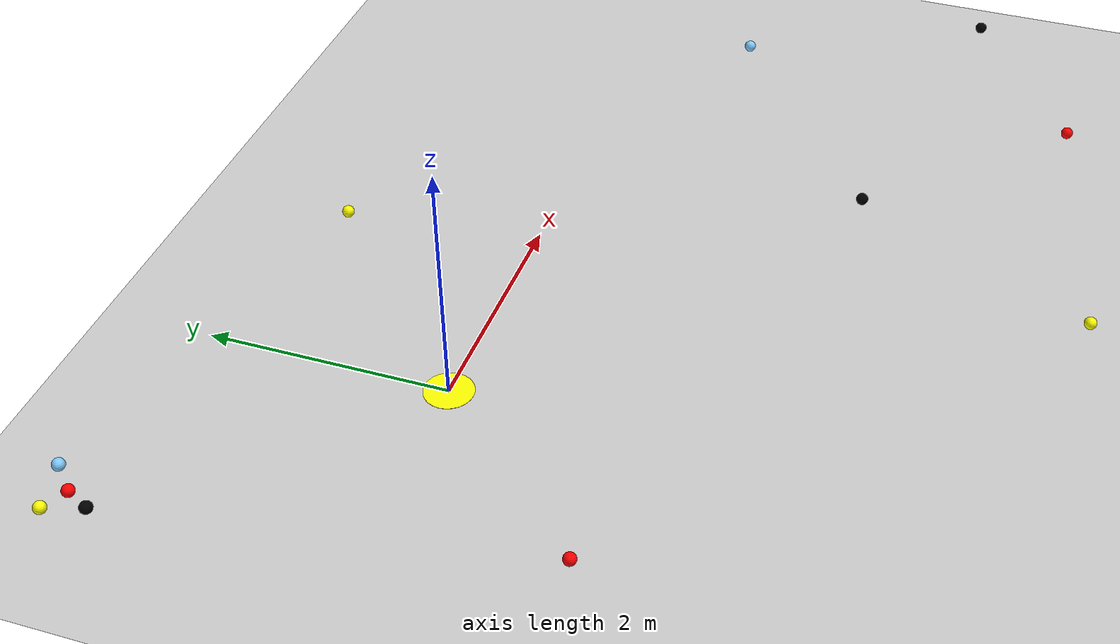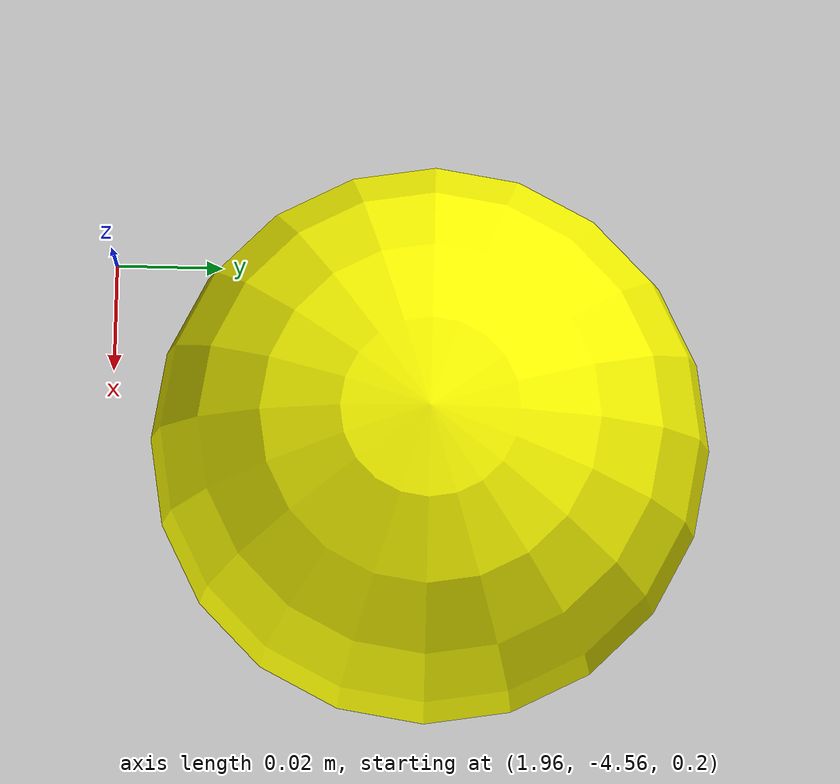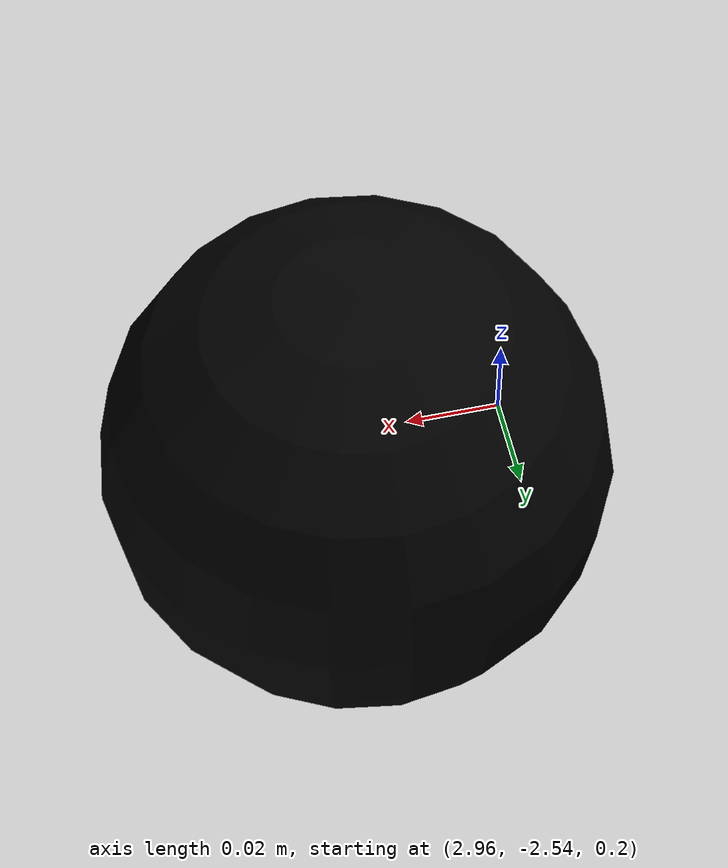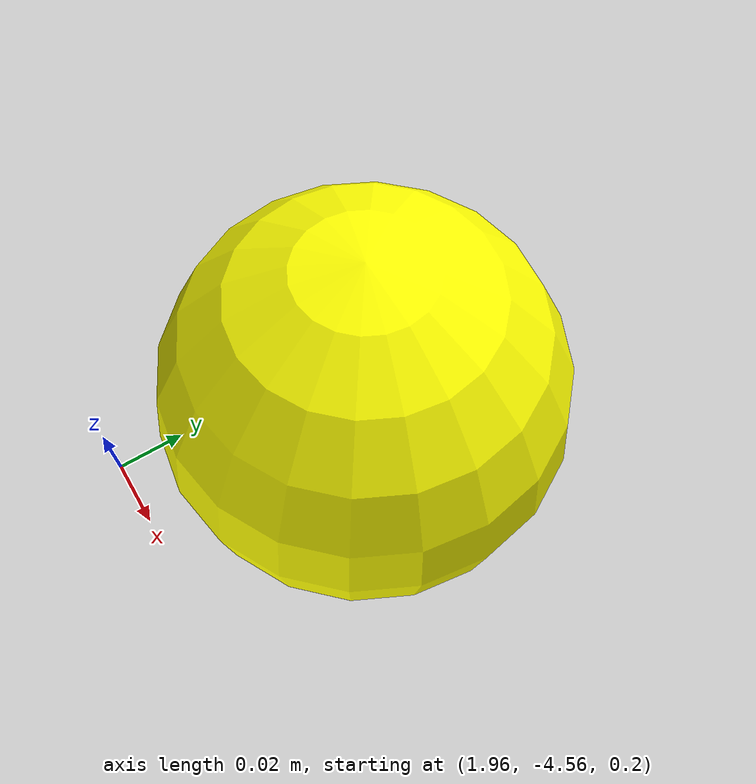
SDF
<?xml version="1.0" ?>
<sdf version="1.10">
  <world name="clustered_spheres_world">

    <plugin filename="gz-sim-physics-system" name="gz::sim::systems::Physics"/>
    <plugin filename="gz-sim-user-commands-system" name="gz::sim::systems::UserCommands"/>
    <plugin filename="gz-sim-scene-broadcaster-system" name="gz::sim::systems::SceneBroadcaster"/>
    <plugin filename="gz-sim-sensors-system" name="gz::sim::systems::Sensors">
      <render_engine>ogre2</render_engine>
    </plugin>
    <plugin filename="gz-sim-imu-system" name="gz::sim::systems::Imu"/>
    <plugin filename="gz-sim-magnetometer-system" name="gz::sim::systems::Magnetometer"/>
    <plugin filename="gz-sim-navsat-system" name="gz::sim::systems::NavSat"/>

    <spherical_coordinates>
      <surface_model>EARTH_WGS84</surface_model>
      <latitude_deg>-25.33074682110693</latitude_deg>
      <longitude_deg>-57.517799631180665</longitude_deg>
      <elevation>80.0</elevation>
      <heading_deg>0</heading_deg>
    </spherical_coordinates>

    <physics name="1ms" type="ignored">
      <max_step_size>0.001</max_step_size>
      <real_time_factor>1</real_time_factor>
      <real_time_update_rate>1000</real_time_update_rate>
    </physics>

    <gravity>0 0 -9.8</gravity>

    <scene>
      <ambient>0.4 0.4 0.4 1</ambient>
      <background>0.7 0.7 0.7 1</background>
      <shadows>true</shadows>
    </scene>

    <model name="ground_plane">
      <static>true</static>
      <link name="link">
        <collision name="collision">
          <geometry><plane><normal>0 0 1</normal><size>100 100</size></plane></geometry>
        </collision>
        <visual name="visual">
          <geometry><plane><normal>0 0 1</normal><size>100 100</size></plane></geometry>
          <material><diffuse>0.8 0.8 0.8 1</diffuse></material>
        </visual>
      </link>
    </model>

    <model name="sphere_A">
      <static>true</static>
      <pose>-2.0 2.0 0.25 0 0 0</pose>
      <link name="link">
        <visual name="visual">
          <geometry><sphere><radius>0.05</radius></sphere></geometry>
          <material><diffuse>1 0 0 1</diffuse></material>
        </visual>
      </link>
    </model>

    <model name="sphere_B">
      <static>true</static>
      <pose>-2.2 2.1 0.25 0 0 0</pose>
      <link name="link">
        <visual name="visual">
          <geometry><sphere><radius>0.05</radius></sphere></geometry>
          <material><diffuse>1 1 0 1</diffuse></material>
        </visual>
      </link>
    </model>

    <model name="sphere_C">
      <static>true</static>
      <pose>-2.1 1.8 0.25 0 0 0</pose>
      <link name="link">
        <visual name="visual">
          <geometry><sphere><radius>0.05</radius></sphere></geometry>
          <material><diffuse>0 0 0 1</diffuse></material>
        </visual>
      </link>
    </model>

    <model name="sphere_D">
      <static>true</static>
      <pose>-1.8 2.2 0.25 0 0 0</pose>
      <link name="link">
        <visual name="visual">
          <geometry><sphere><radius>0.05</radius></sphere></geometry>
          <material><diffuse>0.5 0.8 1 1</diffuse></material>
        </visual>
      </link>
    </model>

    <model name="sphere_E">
      <static>true</static>
      <pose>-1.5 -1.5 0.25 0 0 0</pose>
      <link name="link">
        <visual name="visual">
          <geometry><sphere><radius>0.05</radius></sphere></geometry>
          <material><diffuse>1 0 0 1</diffuse></material>
        </visual>
      </link>
    </model>

    <model name="sphere_F">
      <static>true</static>
      <pose>1.5 1.5 0.25 0 0 0</pose>
      <link name="link">
        <visual name="visual">
          <geometry><sphere><radius>0.05</radius></sphere></geometry>
          <material><diffuse>1 1 0 1</diffuse></material>
        </visual>
      </link>
    </model>

    <model name="sphere_G">
      <static>true</static>
      <pose>3.0 -2.5 0.25 0 0 0</pose>
      <link name="link">
        <visual name="visual">
          <geometry><sphere><radius>0.05</radius></sphere></geometry>
          <material><diffuse>0 0 0 1</diffuse></material>
        </visual>
      </link>
    </model>

    <model name="sphere_H">
      <static>true</static>
      <pose>5.0 -1.0 0.25 0 0 0</pose>
      <link name="link">
        <visual name="visual">
          <geometry><sphere><radius>0.05</radius></sphere></geometry>
          <material><diffuse>0.5 0.8 1 1</diffuse></material>
        </visual>
      </link>
    </model>

    <model name="sphere_I">
      <static>true</static>
      <pose>4.5 -4.0 0.25 0 0 0</pose>
      <link name="link">
        <visual name="visual">
          <geometry><sphere><radius>0.05</radius></sphere></geometry>
          <material><diffuse>1 0 0 1</diffuse></material>
        </visual>
      </link>
    </model>

    <model name="sphere_J">
      <static>true</static>
      <pose>2.0 -4.5 0.25 0 0 0</pose>
      <link name="link">
        <visual name="visual">
          <geometry><sphere><radius>0.05</radius></sphere></geometry>
          <material><diffuse>1 1 0 1</diffuse></material>
        </visual>
      </link>
    </model>

    <model name="sphere_K">
      <static>true</static>
      <pose>6.0 -3.0 0.25 0 0 0</pose>
      <link name="link">
        <visual name="visual">
          <geometry><sphere><radius>0.05</radius></sphere></geometry>
          <material><diffuse>0 0 0 1</diffuse></material>
        </visual>
      </link>
    </model>

    <model name="origin_marker">
      <static>true</static>
      <pose>0 0 0.001 0 0 0</pose>
      <link name="link">
        <visual name="visual">
          <geometry><cylinder><radius>0.2</radius><length>0.002</length></cylinder></geometry>
          <material><diffuse>1 1 0 1</diffuse></material>
        </visual>
      </link>
    </model>

    <light name="sun" type="directional">
      <pose>0 0 10 0 0 0</pose>
      <cast_shadows>true</cast_shadows>
      <direction>-0.5 0.1 -0.9</direction>
      <diffuse>0.8 0.8 0.8 1</diffuse>
      <specular>0.2 0.2 0.2 1</specular>
    </light>

  </world>
</sdf>
